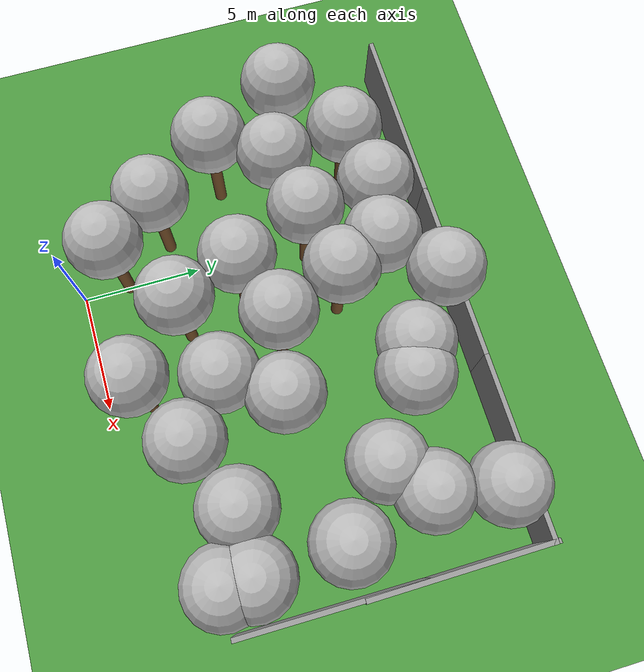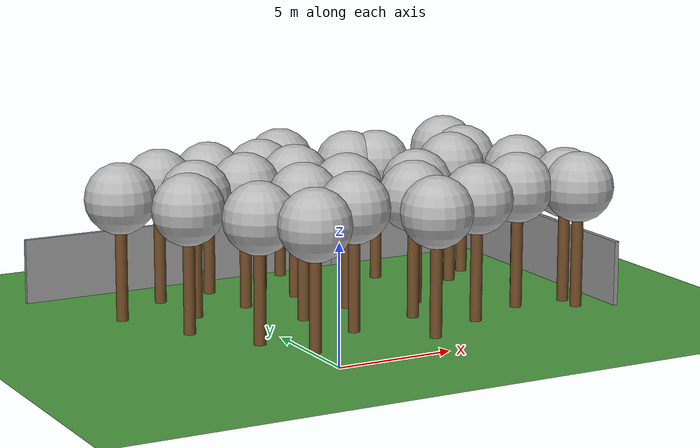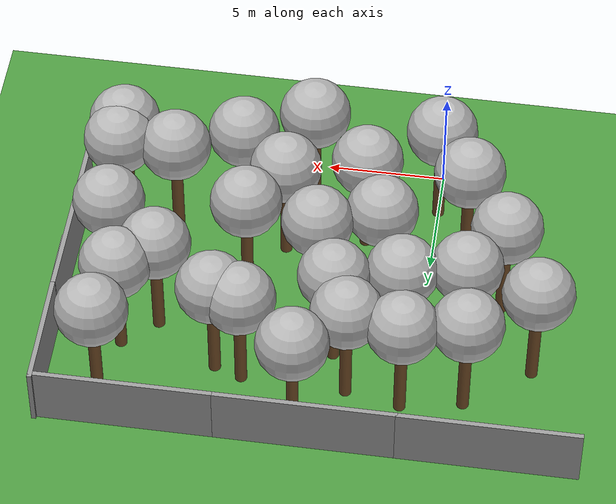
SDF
<sdf version="1.7">
 <world name="default">
  <model name="tree_simple495">
   <static>1</static>
   <link name="link">
    <pose>0 0 0.1 0 -0 0</pose>
    <collision name="collision_trunk">
     <pose>0 0 2 0 -0 0</pose>
     <geometry><cylinder><radius>0.25</radius><length>4</length></cylinder></geometry>
    </collision>
    <collision name="collision_treetop">
     <pose>0 0 5.2 0 -0 0</pose>
     <geometry><sphere><radius>1.5</radius></sphere></geometry>
    </collision>
    <visual name="trunk">
     <pose>0 0 2 0 -0 0</pose>
     <geometry><cylinder><radius>0.25</radius><length>4</length></cylinder></geometry>
     <material>
      <script>
       <uri>model://tree_simple/scripts</uri>
       <uri>model://tree_simple/materials/textures</uri>
       <name>TreeSimple/Trunk</name>
      </script>
     </material>
    </visual>
    <visual name="treetop">
     <pose>0 0 5.2 0 -0 0</pose>
     <geometry><sphere><radius>1.5</radius></sphere></geometry>
     <material>
      <script>
       <uri>model://tree_simple/scripts</uri>
       <uri>model://tree_simple/materials/textures</uri>
       <name>TreeSimple/Treetop</name>
      </script>
     </material>
    </visual>
   </link>
   <pose>13.2663 3.23501 0 0 -0 0</pose>
  </model>
  <model name="tree_simple486">
   <static>1</static>
   <link name="link">
    <pose>0 0 0.1 0 -0 0</pose>
    <collision name="collision_trunk">
     <pose>0 0 2 0 -0 0</pose>
     <geometry><cylinder><radius>0.25</radius><length>4</length></cylinder></geometry>
    </collision>
    <collision name="collision_treetop">
     <pose>0 0 5.2 0 -0 0</pose>
     <geometry><sphere><radius>1.5</radius></sphere></geometry>
    </collision>
    <visual name="trunk">
     <pose>0 0 2 0 -0 0</pose>
     <geometry><cylinder><radius>0.25</radius><length>4</length></cylinder></geometry>
     <material>
      <script>
       <uri>model://tree_simple/scripts</uri>
       <uri>model://tree_simple/materials/textures</uri>
       <name>TreeSimple/Trunk</name>
      </script>
     </material>
    </visual>
    <visual name="treetop">
     <pose>0 0 5.2 0 -0 0</pose>
     <geometry><sphere><radius>1.5</radius></sphere></geometry>
     <material>
      <script>
       <uri>model://tree_simple/scripts</uri>
       <uri>model://tree_simple/materials/textures</uri>
       <name>TreeSimple/Treetop</name>
      </script>
     </material>
    </visual>
   </link>
   <pose>8.18282 11.6524 0 0 -0 0</pose>
  </model>
  <model name="tree_simple480">
   <static>1</static>
   <link name="link">
    <pose>0 0 0.1 0 -0 0</pose>
    <collision name="collision_trunk">
     <pose>0 0 2 0 -0 0</pose>
     <geometry><cylinder><radius>0.25</radius><length>4</length></cylinder></geometry>
    </collision>
    <collision name="collision_treetop">
     <pose>0 0 5.2 0 -0 0</pose>
     <geometry><sphere><radius>1.5</radius></sphere></geometry>
    </collision>
    <visual name="trunk">
     <pose>0 0 2 0 -0 0</pose>
     <geometry><cylinder><radius>0.25</radius><length>4</length></cylinder></geometry>
     <material>
      <script>
       <uri>model://tree_simple/scripts</uri>
       <uri>model://tree_simple/materials/textures</uri>
       <name>TreeSimple/Trunk</name>
      </script>
     </material>
    </visual>
    <visual name="treetop">
     <pose>0 0 5.2 0 -0 0</pose>
     <geometry><sphere><radius>1.5</radius></sphere></geometry>
     <material>
      <script>
       <uri>model://tree_simple/scripts</uri>
       <uri>model://tree_simple/materials/textures</uri>
       <name>TreeSimple/Treetop</name>
      </script>
     </material>
    </visual>
   </link>
   <pose>-2.16211 12.1351 0 0 -0 0</pose>
  </model>
  <model name="tree_simple421">
   <static>1</static>
   <link name="link">
    <pose>0 0 0.1 0 -0 0</pose>
    <collision name="collision_trunk">
     <pose>0 0 2 0 -0 0</pose>
     <geometry><cylinder><radius>0.25</radius><length>4</length></cylinder></geometry>
    </collision>
    <collision name="collision_treetop">
     <pose>0 0 5.2 0 -0 0</pose>
     <geometry><sphere><radius>1.5</radius></sphere></geometry>
    </collision>
    <visual name="trunk">
     <pose>0 0 2 0 -0 0</pose>
     <geometry><cylinder><radius>0.25</radius><length>4</length></cylinder></geometry>
     <material>
      <script>
       <uri>model://tree_simple/scripts</uri>
       <uri>model://tree_simple/materials/textures</uri>
       <name>TreeSimple/Trunk</name>
      </script>
     </material>
    </visual>
    <visual name="treetop">
     <pose>0 0 5.2 0 -0 0</pose>
     <geometry><sphere><radius>1.5</radius></sphere></geometry>
     <material>
      <script>
       <uri>model://tree_simple/scripts</uri>
       <uri>model://tree_simple/materials/textures</uri>
       <name>TreeSimple/Treetop</name>
      </script>
     </material>
    </visual>
   </link>
   <pose>7.02493 12.056 0 0 -0 0</pose>
  </model>
  <model name="tree_simple417">
   <static>1</static>
   <link name="link">
    <pose>0 0 0.1 0 -0 0</pose>
    <collision name="collision_trunk">
     <pose>0 0 2 0 -0 0</pose>
     <geometry><cylinder><radius>0.25</radius><length>4</length></cylinder></geometry>
    </collision>
    <collision name="collision_treetop">
     <pose>0 0 5.2 0 -0 0</pose>
     <geometry><sphere><radius>1.5</radius></sphere></geometry>
    </collision>
    <visual name="trunk">
     <pose>0 0 2 0 -0 0</pose>
     <geometry><cylinder><radius>0.25</radius><length>4</length></cylinder></geometry>
     <material>
      <script>
       <uri>model://tree_simple/scripts</uri>
       <uri>model://tree_simple/materials/textures</uri>
       <name>TreeSimple/Trunk</name>
      </script>
     </material>
    </visual>
    <visual name="treetop">
     <pose>0 0 5.2 0 -0 0</pose>
     <geometry><sphere><radius>1.5</radius></sphere></geometry>
     <material>
      <script>
       <uri>model://tree_simple/scripts</uri>
       <uri>model://tree_simple/materials/textures</uri>
       <name>TreeSimple/Treetop</name>
      </script>
     </material>
    </visual>
   </link>
   <pose>-1.82311 9.17527 0 0 -0 0</pose>
  </model>
  <model name="tree_simple412">
   <static>1</static>
   <link name="link">
    <pose>0 0 0.1 0 -0 0</pose>
    <collision name="collision_trunk">
     <pose>0 0 2 0 -0 0</pose>
     <geometry><cylinder><radius>0.25</radius><length>4</length></cylinder></geometry>
    </collision>
    <collision name="collision_treetop">
     <pose>0 0 5.2 0 -0 0</pose>
     <geometry><sphere><radius>1.5</radius></sphere></geometry>
    </collision>
    <visual name="trunk">
     <pose>0 0 2 0 -0 0</pose>
     <geometry><cylinder><radius>0.25</radius><length>4</length></cylinder></geometry>
     <material>
      <script>
       <uri>model://tree_simple/scripts</uri>
       <uri>model://tree_simple/materials/textures</uri>
       <name>TreeSimple/Trunk</name>
      </script>
     </material>
    </visual>
    <visual name="treetop">
     <pose>0 0 5.2 0 -0 0</pose>
     <geometry><sphere><radius>1.5</radius></sphere></geometry>
     <material>
      <script>
       <uri>model://tree_simple/scripts</uri>
       <uri>model://tree_simple/materials/textures</uri>
       <name>TreeSimple/Treetop</name>
      </script>
     </material>
    </visual>
   </link>
   <pose>1.94235 6.68973 0 0 -0 0</pose>
  </model>
  <model name="tree_simple350">
   <static>1</static>
   <link name="link">
    <pose>0 0 0.1 0 -0 0</pose>
    <collision name="collision_trunk">
     <pose>0 0 2 0 -0 0</pose>
     <geometry><cylinder><radius>0.25</radius><length>4</length></cylinder></geometry>
    </collision>
    <collision name="collision_treetop">
     <pose>0 0 5.2 0 -0 0</pose>
     <geometry><sphere><radius>1.5</radius></sphere></geometry>
    </collision>
    <visual name="trunk">
     <pose>0 0 2 0 -0 0</pose>
     <geometry><cylinder><radius>0.25</radius><length>4</length></cylinder></geometry>
     <material>
      <script>
       <uri>model://tree_simple/scripts</uri>
       <uri>model://tree_simple/materials/textures</uri>
       <name>TreeSimple/Trunk</name>
      </script>
     </material>
    </visual>
    <visual name="treetop">
     <pose>0 0 5.2 0 -0 0</pose>
     <geometry><sphere><radius>1.5</radius></sphere></geometry>
     <material>
      <script>
       <uri>model://tree_simple/scripts</uri>
       <uri>model://tree_simple/materials/textures</uri>
       <name>TreeSimple/Treetop</name>
      </script>
     </material>
    </visual>
   </link>
   <pose>5.40258 1.73801 0 0 -0 0</pose>
  </model>
  <model name="tree_simple346">
   <static>1</static>
   <link name="link">
    <pose>0 0 0.1 0 -0 0</pose>
    <collision name="collision_trunk">
     <pose>0 0 2 0 -0 0</pose>
     <geometry><cylinder><radius>0.25</radius><length>4</length></cylinder></geometry>
    </collision>
    <collision name="collision_treetop">
     <pose>0 0 5.2 0 -0 0</pose>
     <geometry><sphere><radius>1.5</radius></sphere></geometry>
    </collision>
    <visual name="trunk">
     <pose>0 0 2 0 -0 0</pose>
     <geometry><cylinder><radius>0.25</radius><length>4</length></cylinder></geometry>
     <material>
      <script>
       <uri>model://tree_simple/scripts</uri>
       <uri>model://tree_simple/materials/textures</uri>
       <name>TreeSimple/Trunk</name>
      </script>
     </material>
    </visual>
    <visual name="treetop">
     <pose>0 0 5.2 0 -0 0</pose>
     <geometry><sphere><radius>1.5</radius></sphere></geometry>
     <material>
      <script>
       <uri>model://tree_simple/scripts</uri>
       <uri>model://tree_simple/materials/textures</uri>
       <name>TreeSimple/Treetop</name>
      </script>
     </material>
    </visual>
   </link>
   <pose>6.18559 4.9134 0 0 -0 0</pose>
  </model>
  <model name="tree_simple324">
   <static>1</static>
   <link name="link">
    <pose>0 0 0.1 0 -0 0</pose>
    <collision name="collision_trunk">
     <pose>0 0 2 0 -0 0</pose>
     <geometry><cylinder><radius>0.25</radius><length>4</length></cylinder></geometry>
    </collision>
    <collision name="collision_treetop">
     <pose>0 0 5.2 0 -0 0</pose>
     <geometry><sphere><radius>1.5</radius></sphere></geometry>
    </collision>
    <visual name="trunk">
     <pose>0 0 2 0 -0 0</pose>
     <geometry><cylinder><radius>0.25</radius><length>4</length></cylinder></geometry>
     <material>
      <script>
       <uri>model://tree_simple/scripts</uri>
       <uri>model://tree_simple/materials/textures</uri>
       <name>TreeSimple/Trunk</name>
      </script>
     </material>
    </visual>
    <visual name="treetop">
     <pose>0 0 5.2 0 -0 0</pose>
     <geometry><sphere><radius>1.5</radius></sphere></geometry>
     <material>
      <script>
       <uri>model://tree_simple/scripts</uri>
       <uri>model://tree_simple/materials/textures</uri>
       <name>TreeSimple/Treetop</name>
      </script>
     </material>
    </visual>
   </link>
   <pose>2.67974 12.1657 0 0 -0 0</pose>
  </model>
  <model name="tree_simple304">
   <static>1</static>
   <link name="link">
    <pose>0 0 0.1 0 -0 0</pose>
    <collision name="collision_trunk">
     <pose>0 0 2 0 -0 0</pose>
     <geometry><cylinder><radius>0.25</radius><length>4</length></cylinder></geometry>
    </collision>
    <collision name="collision_treetop">
     <pose>0 0 5.2 0 -0 0</pose>
     <geometry><sphere><radius>1.5</radius></sphere></geometry>
    </collision>
    <visual name="trunk">
     <pose>0 0 2 0 -0 0</pose>
     <geometry><cylinder><radius>0.25</radius><length>4</length></cylinder></geometry>
     <material>
      <script>
       <uri>model://tree_simple/scripts</uri>
       <uri>model://tree_simple/materials/textures</uri>
       <name>TreeSimple/Trunk</name>
      </script>
     </material>
    </visual>
    <visual name="treetop">
     <pose>0 0 5.2 0 -0 0</pose>
     <geometry><sphere><radius>1.5</radius></sphere></geometry>
     <material>
      <script>
       <uri>model://tree_simple/scripts</uri>
       <uri>model://tree_simple/materials/textures</uri>
       <name>TreeSimple/Treetop</name>
      </script>
     </material>
    </visual>
   </link>
   <pose>12.7492 13.4737 0 0 -0 0</pose>
  </model>
  <model name="tree_simple269">
   <static>1</static>
   <link name="link">
    <pose>0 0 0.1 0 -0 0</pose>
    <collision name="collision_trunk">
     <pose>0 0 2 0 -0 0</pose>
     <geometry><cylinder><radius>0.25</radius><length>4</length></cylinder></geometry>
    </collision>
    <collision name="collision_treetop">
     <pose>0 0 5.2 0 -0 0</pose>
     <geometry><sphere><radius>1.5</radius></sphere></geometry>
    </collision>
    <visual name="trunk">
     <pose>0 0 2 0 -0 0</pose>
     <geometry><cylinder><radius>0.25</radius><length>4</length></cylinder></geometry>
     <material>
      <script>
       <uri>model://tree_simple/scripts</uri>
       <uri>model://tree_simple/materials/textures</uri>
       <name>TreeSimple/Trunk</name>
      </script>
     </material>
    </visual>
    <visual name="treetop">
     <pose>0 0 5.2 0 -0 0</pose>
     <geometry><sphere><radius>1.5</radius></sphere></geometry>
     <material>
      <script>
       <uri>model://tree_simple/scripts</uri>
       <uri>model://tree_simple/materials/textures</uri>
       <name>TreeSimple/Treetop</name>
      </script>
     </material>
    </visual>
   </link>
   <pose>3.43166 10.3419 0 0 -0 0</pose>
  </model>
  <model name="tree_simple246">
   <static>1</static>
   <link name="link">
    <pose>0 0 0.1 0 -0 0</pose>
    <collision name="collision_trunk">
     <pose>0 0 2 0 -0 0</pose>
     <geometry><cylinder><radius>0.25</radius><length>4</length></cylinder></geometry>
    </collision>
    <collision name="collision_treetop">
     <pose>0 0 5.2 0 -0 0</pose>
     <geometry><sphere><radius>1.5</radius></sphere></geometry>
    </collision>
    <visual name="trunk">
     <pose>0 0 2 0 -0 0</pose>
     <geometry><cylinder><radius>0.25</radius><length>4</length></cylinder></geometry>
     <material>
      <script>
       <uri>model://tree_simple/scripts</uri>
       <uri>model://tree_simple/materials/textures</uri>
       <name>TreeSimple/Trunk</name>
      </script>
     </material>
    </visual>
    <visual name="treetop">
     <pose>0 0 5.2 0 -0 0</pose>
     <geometry><sphere><radius>1.5</radius></sphere></geometry>
     <material>
      <script>
       <uri>model://tree_simple/scripts</uri>
       <uri>model://tree_simple/materials/textures</uri>
       <name>TreeSimple/Treetop</name>
      </script>
     </material>
    </visual>
   </link>
   <pose>4.59531 14.0378 0 0 -0 0</pose>
  </model>
  <model name="tree_simple145">
   <static>1</static>
   <link name="link">
    <pose>0 0 0.1 0 -0 0</pose>
    <collision name="collision_trunk">
     <pose>0 0 2 0 -0 0</pose>
     <geometry><cylinder><radius>0.25</radius><length>4</length></cylinder></geometry>
    </collision>
    <collision name="collision_treetop">
     <pose>0 0 5.2 0 -0 0</pose>
     <geometry><sphere><radius>1.5</radius></sphere></geometry>
    </collision>
    <visual name="trunk">
     <pose>0 0 2 0 -0 0</pose>
     <geometry><cylinder><radius>0.25</radius><length>4</length></cylinder></geometry>
     <material>
      <script>
       <uri>model://tree_simple/scripts</uri>
       <uri>model://tree_simple/materials/textures</uri>
       <name>TreeSimple/Trunk</name>
      </script>
     </material>
    </visual>
    <visual name="treetop">
     <pose>0 0 5.2 0 -0 0</pose>
     <geometry><sphere><radius>1.5</radius></sphere></geometry>
     <material>
      <script>
       <uri>model://tree_simple/scripts</uri>
       <uri>model://tree_simple/materials/textures</uri>
       <name>TreeSimple/Treetop</name>
      </script>
     </material>
    </visual>
   </link>
   <pose>7.53257 6.98647 0 0 -0 0</pose>
  </model>
  <model name="tree_simple130">
   <static>1</static>
   <link name="link">
    <pose>0 0 0.1 0 -0 0</pose>
    <collision name="collision_trunk">
     <pose>0 0 2 0 -0 0</pose>
     <geometry><cylinder><radius>0.25</radius><length>4</length></cylinder></geometry>
    </collision>
    <collision name="collision_treetop">
     <pose>0 0 5.2 0 -0 0</pose>
     <geometry><sphere><radius>1.5</radius></sphere></geometry>
    </collision>
    <visual name="trunk">
     <pose>0 0 2 0 -0 0</pose>
     <geometry><cylinder><radius>0.25</radius><length>4</length></cylinder></geometry>
     <material>
      <script>
       <uri>model://tree_simple/scripts</uri>
       <uri>model://tree_simple/materials/textures</uri>
       <name>TreeSimple/Trunk</name>
      </script>
     </material>
    </visual>
    <visual name="treetop">
     <pose>0 0 5.2 0 -0 0</pose>
     <geometry><sphere><radius>1.5</radius></sphere></geometry>
     <material>
      <script>
       <uri>model://tree_simple/scripts</uri>
       <uri>model://tree_simple/materials/textures</uri>
       <name>TreeSimple/Treetop</name>
      </script>
     </material>
    </visual>
   </link>
   <pose>-4.79782 10.1485 0 0 -0 0</pose>
  </model>
  <model name="tree_simple81">
   <static>1</static>
   <link name="link">
    <pose>0 0 0.1 0 -0 0</pose>
    <collision name="collision_trunk">
     <pose>0 0 2 0 -0 0</pose>
     <geometry><cylinder><radius>0.25</radius><length>4</length></cylinder></geometry>
    </collision>
    <collision name="collision_treetop">
     <pose>0 0 5.2 0 -0 0</pose>
     <geometry><sphere><radius>1.5</radius></sphere></geometry>
    </collision>
    <visual name="trunk">
     <pose>0 0 2 0 -0 0</pose>
     <geometry><cylinder><radius>0.25</radius><length>4</length></cylinder></geometry>
     <material>
      <script>
       <uri>model://tree_simple/scripts</uri>
       <uri>model://tree_simple/materials/textures</uri>
       <name>TreeSimple/Trunk</name>
      </script>
     </material>
    </visual>
    <visual name="treetop">
     <pose>0 0 5.2 0 -0 0</pose>
     <geometry><sphere><radius>1.5</radius></sphere></geometry>
     <material>
      <script>
       <uri>model://tree_simple/scripts</uri>
       <uri>model://tree_simple/materials/textures</uri>
       <name>TreeSimple/Treetop</name>
      </script>
     </material>
    </visual>
   </link>
   <pose>13.3023 4.2922 0 0 -0 0</pose>
  </model>
  <model name="tree_simple72">
   <static>1</static>
   <link name="link">
    <pose>0 0 0.1 0 -0 0</pose>
    <collision name="collision_trunk">
     <pose>0 0 2 0 -0 0</pose>
     <geometry><cylinder><radius>0.25</radius><length>4</length></cylinder></geometry>
    </collision>
    <collision name="collision_treetop">
     <pose>0 0 5.2 0 -0 0</pose>
     <geometry><sphere><radius>1.5</radius></sphere></geometry>
    </collision>
    <visual name="trunk">
     <pose>0 0 2 0 -0 0</pose>
     <geometry><cylinder><radius>0.25</radius><length>4</length></cylinder></geometry>
     <material>
      <script>
       <uri>model://tree_simple/scripts</uri>
       <uri>model://tree_simple/materials/textures</uri>
       <name>TreeSimple/Trunk</name>
      </script>
     </material>
    </visual>
    <visual name="treetop">
     <pose>0 0 5.2 0 -0 0</pose>
     <geometry><sphere><radius>1.5</radius></sphere></geometry>
     <material>
      <script>
       <uri>model://tree_simple/scripts</uri>
       <uri>model://tree_simple/materials/textures</uri>
       <name>TreeSimple/Treetop</name>
      </script>
     </material>
    </visual>
   </link>
   <pose>0.388373 12.6066 0 0 -0 0</pose>
  </model>
  <model name="tree_simple66">
   <static>1</static>
   <link name="link">
    <pose>0 0 0.1 0 -0 0</pose>
    <collision name="collision_trunk">
     <pose>0 0 2 0 -0 0</pose>
     <geometry><cylinder><radius>0.25</radius><length>4</length></cylinder></geometry>
    </collision>
    <collision name="collision_treetop">
     <pose>0 0 5.2 0 -0 0</pose>
     <geometry><sphere><radius>1.5</radius></sphere></geometry>
    </collision>
    <visual name="trunk">
     <pose>0 0 2 0 -0 0</pose>
     <geometry><cylinder><radius>0.25</radius><length>4</length></cylinder></geometry>
     <material>
      <script>
       <uri>model://tree_simple/scripts</uri>
       <uri>model://tree_simple/materials/textures</uri>
       <name>TreeSimple/Trunk</name>
      </script>
     </material>
    </visual>
    <visual name="treetop">
     <pose>0 0 5.2 0 -0 0</pose>
     <geometry><sphere><radius>1.5</radius></sphere></geometry>
     <material>
      <script>
       <uri>model://tree_simple/scripts</uri>
       <uri>model://tree_simple/materials/textures</uri>
       <name>TreeSimple/Treetop</name>
      </script>
     </material>
    </visual>
   </link>
   <pose>8.20454 3.17714 0 0 -0 0</pose>
  </model>
  <model name="ground_plane">
   <static>1</static>
   <link name="link">
    <collision name="collision">
     <geometry><plane><normal>0 0 1</normal><size>30 30</size></plane></geometry>
     <surface><friction><ode><mu>100</mu><mu2>50</mu2></ode></friction></surface>
    </collision>
    <visual name="grass">
     <cast_shadows>0</cast_shadows>
     <geometry><plane><normal>0 0 1</normal><size>30 30</size></plane></geometry>
     <material>
      <script><uri>file://media/materials/scripts/Gazebo.material</uri><name>Gazebo/Grass</name></script>
     </material>
    </visual>
   </link>
  </model>
  <model name="grey_wall_clone_1">
   <static>1</static>
   <link name="link">
    <pose>0 0 1.4 0 -0 0</pose>
    <collision name="collision"><geometry><box><size>7.5 0.2 2.8</size></box></geometry></collision>
    <visual name="visual">
     <cast_shadows>0</cast_shadows>
     <geometry><box><size>7.5 0.2 2.8</size></box></geometry>
     <material>
      <script>
       <uri>model://grey_wall/materials/scripts</uri>
       <uri>model://grey_wall/materials/textures</uri>
       <name>vrc/grey_wall</name>
      </script>
     </material>
    </visual>
   </link>
   <pose>15.0742 6.56545 0 0 -0 1.56351</pose>
  </model>
  <model name="grey_wall_clone_2">
   <static>1</static>
   <link name="link">
    <pose>0 0 1.4 0 -0 0</pose>
    <collision name="collision"><geometry><box><size>7.5 0.2 2.8</size></box></geometry></collision>
    <visual name="visual">
     <cast_shadows>0</cast_shadows>
     <geometry><box><size>7.5 0.2 2.8</size></box></geometry>
     <material>
      <script>
       <uri>model://grey_wall/materials/scripts</uri>
       <uri>model://grey_wall/materials/textures</uri>
       <name>vrc/grey_wall</name>
      </script>
     </material>
    </visual>
   </link>
   <pose>15.1039 11.5218 0 0 -0 1.57542</pose>
  </model>
  <model name="grey_wall_clone_2_clone">
   <static>1</static>
   <link name="link">
    <pose>0 0 1.4 0 -0 0</pose>
    <collision name="collision"><geometry><box><size>7.5 0.2 2.8</size></box></geometry></collision>
    <visual name="visual">
     <cast_shadows>0</cast_shadows>
     <geometry><box><size>7.5 0.2 2.8</size></box></geometry>
     <material>
      <script>
       <uri>model://grey_wall/materials/scripts</uri>
       <uri>model://grey_wall/materials/textures</uri>
       <name>vrc/grey_wall</name>
      </script>
     </material>
    </visual>
   </link>
   <pose>11.4446 15.0622 0 0 0 -3.1404</pose>
  </model>
  <model name="grey_wall_clone_2_clone_clone">
   <static>1</static>
   <link name="link">
    <pose>0 0 1.4 0 -0 0</pose>
    <collision name="collision"><geometry><box><size>7.5 0.2 2.8</size></box></geometry></collision>
    <visual name="visual">
     <cast_shadows>0</cast_shadows>
     <geometry><box><size>7.5 0.2 2.8</size></box></geometry>
     <material>
      <script>
       <uri>model://grey_wall/materials/scripts</uri>
       <uri>model://grey_wall/materials/textures</uri>
       <name>vrc/grey_wall</name>
      </script>
     </material>
    </visual>
   </link>
   <pose>3.97484 15.0545 0 0 0 -3.1404</pose>
  </model>
  <model name="grey_wall_clone_2_clone_clone_0">
   <static>1</static>
   <link name="link">
    <pose>0 0 1.4 0 -0 0</pose>
    <collision name="collision"><geometry><box><size>7.5 0.2 2.8</size></box></geometry></collision>
    <visual name="visual">
     <cast_shadows>0</cast_shadows>
     <geometry><box><size>7.5 0.2 2.8</size></box></geometry>
     <material>
      <script>
       <uri>model://grey_wall/materials/scripts</uri>
       <uri>model://grey_wall/materials/textures</uri>
       <name>vrc/grey_wall</name>
      </script>
     </material>
    </visual>
   </link>
   <pose>-3.44128 15.0491 0 0 0 -3.1404</pose>
  </model>
  <model name="tree_simple432_clone_10">
   <static>1</static>
   <link name="link">
    <pose>0 0 0.1 0 -0 0</pose>
    <collision name="collision_trunk">
     <pose>0 0 2 0 -0 0</pose>
     <geometry><cylinder><radius>0.25</radius><length>4</length></cylinder></geometry>
    </collision>
    <collision name="collision_treetop">
     <pose>0 0 5.2 0 -0 0</pose>
     <geometry><sphere><radius>1.5</radius></sphere></geometry>
    </collision>
    <visual name="trunk">
     <pose>0 0 2 0 -0 0</pose>
     <geometry><cylinder><radius>0.25</radius><length>4</length></cylinder></geometry>
     <material>
      <script>
       <uri>model://tree_simple/scripts</uri>
       <uri>model://tree_simple/materials/textures</uri>
       <name>TreeSimple/Trunk</name>
      </script>
     </material>
    </visual>
    <visual name="treetop">
     <pose>0 0 5.2 0 -0 0</pose>
     <geometry><sphere><radius>1.5</radius></sphere></geometry>
     <material>
      <script>
       <uri>model://tree_simple/scripts</uri>
       <uri>model://tree_simple/materials/textures</uri>
       <name>TreeSimple/Treetop</name>
      </script>
     </material>
    </visual>
   </link>
   <pose>-1.3919 4.12139 0 0 -0 0</pose>
  </model>
  <model name="tree_simple432_clone_11">
   <static>1</static>
   <link name="link">
    <pose>0 0 0.1 0 -0 0</pose>
    <collision name="collision_trunk">
     <pose>0 0 2 0 -0 0</pose>
     <geometry><cylinder><radius>0.25</radius><length>4</length></cylinder></geometry>
    </collision>
    <collision name="collision_treetop">
     <pose>0 0 5.2 0 -0 0</pose>
     <geometry><sphere><radius>1.5</radius></sphere></geometry>
    </collision>
    <visual name="trunk">
     <pose>0 0 2 0 -0 0</pose>
     <geometry><cylinder><radius>0.25</radius><length>4</length></cylinder></geometry>
     <material>
      <script>
       <uri>model://tree_simple/scripts</uri>
       <uri>model://tree_simple/materials/textures</uri>
       <name>TreeSimple/Trunk</name>
      </script>
     </material>
    </visual>
    <visual name="treetop">
     <pose>0 0 5.2 0 -0 0</pose>
     <geometry><sphere><radius>1.5</radius></sphere></geometry>
     <material>
      <script>
       <uri>model://tree_simple/scripts</uri>
       <uri>model://tree_simple/materials/textures</uri>
       <name>TreeSimple/Treetop</name>
      </script>
     </material>
    </visual>
   </link>
   <pose>0 2 0 0 -0 0</pose>
  </model>
  <model name="tree_simple432_clone_12">
   <static>1</static>
   <link name="link">
    <pose>0 0 0.1 0 -0 0</pose>
    <collision name="collision_trunk">
     <pose>0 0 2 0 -0 0</pose>
     <geometry><cylinder><radius>0.25</radius><length>4</length></cylinder></geometry>
    </collision>
    <collision name="collision_treetop">
     <pose>0 0 5.2 0 -0 0</pose>
     <geometry><sphere><radius>1.5</radius></sphere></geometry>
    </collision>
    <visual name="trunk">
     <pose>0 0 2 0 -0 0</pose>
     <geometry><cylinder><radius>0.25</radius><length>4</length></cylinder></geometry>
     <material>
      <script>
       <uri>model://tree_simple/scripts</uri>
       <uri>model://tree_simple/materials/textures</uri>
       <name>TreeSimple/Trunk</name>
      </script>
     </material>
    </visual>
    <visual name="treetop">
     <pose>0 0 5.2 0 -0 0</pose>
     <geometry><sphere><radius>1.5</radius></sphere></geometry>
     <material>
      <script>
       <uri>model://tree_simple/scripts</uri>
       <uri>model://tree_simple/materials/textures</uri>
       <name>TreeSimple/Treetop</name>
      </script>
     </material>
    </visual>
   </link>
   <pose>2.88698 4.05449 0 0 -0 0</pose>
  </model>
  <model name="tree_simple432_clone_14">
   <static>1</static>
   <link name="link">
    <pose>0 0 0.1 0 -0 0</pose>
    <collision name="collision_trunk">
     <pose>0 0 2 0 -0 0</pose>
     <geometry><cylinder><radius>0.25</radius><length>4</length></cylinder></geometry>
    </collision>
    <collision name="collision_treetop">
     <pose>0 0 5.2 0 -0 0</pose>
     <geometry><sphere><radius>1.5</radius></sphere></geometry>
    </collision>
    <visual name="trunk">
     <pose>0 0 2 0 -0 0</pose>
     <geometry><cylinder><radius>0.25</radius><length>4</length></cylinder></geometry>
     <material>
      <script>
       <uri>model://tree_simple/scripts</uri>
       <uri>model://tree_simple/materials/textures</uri>
       <name>TreeSimple/Trunk</name>
      </script>
     </material>
    </visual>
    <visual name="treetop">
     <pose>0 0 5.2 0 -0 0</pose>
     <geometry><sphere><radius>1.5</radius></sphere></geometry>
     <material>
      <script>
       <uri>model://tree_simple/scripts</uri>
       <uri>model://tree_simple/materials/textures</uri>
       <name>TreeSimple/Treetop</name>
      </script>
     </material>
    </visual>
   </link>
   <pose>13.1147 7.71643 0 0 -0 0</pose>
  </model>
  <model name="tree_simple432_clone_15">
   <static>1</static>
   <link name="link">
    <pose>0 0 0.1 0 -0 0</pose>
    <collision name="collision_trunk">
     <pose>0 0 2 0 -0 0</pose>
     <geometry><cylinder><radius>0.25</radius><length>4</length></cylinder></geometry>
    </collision>
    <collision name="collision_treetop">
     <pose>0 0 5.2 0 -0 0</pose>
     <geometry><sphere><radius>1.5</radius></sphere></geometry>
    </collision>
    <visual name="trunk">
     <pose>0 0 2 0 -0 0</pose>
     <geometry><cylinder><radius>0.25</radius><length>4</length></cylinder></geometry>
     <material>
      <script>
       <uri>model://tree_simple/scripts</uri>
       <uri>model://tree_simple/materials/textures</uri>
       <name>TreeSimple/Trunk</name>
      </script>
     </material>
    </visual>
    <visual name="treetop">
     <pose>0 0 5.2 0 -0 0</pose>
     <geometry><sphere><radius>1.5</radius></sphere></geometry>
     <material>
      <script>
       <uri>model://tree_simple/scripts</uri>
       <uri>model://tree_simple/materials/textures</uri>
       <name>TreeSimple/Treetop</name>
      </script>
     </material>
    </visual>
   </link>
   <pose>10.8627 9.71572 0 0 -0 0</pose>
  </model>
  <model name="tree_simple432_clone_16">
   <static>1</static>
   <link name="link">
    <pose>0 0 0.1 0 -0 0</pose>
    <collision name="collision_trunk">
     <pose>0 0 2 0 -0 0</pose>
     <geometry><cylinder><radius>0.25</radius><length>4</length></cylinder></geometry>
    </collision>
    <collision name="collision_treetop">
     <pose>0 0 5.2 0 -0 0</pose>
     <geometry><sphere><radius>1.5</radius></sphere></geometry>
    </collision>
    <visual name="trunk">
     <pose>0 0 2 0 -0 0</pose>
     <geometry><cylinder><radius>0.25</radius><length>4</length></cylinder></geometry>
     <material>
      <script>
       <uri>model://tree_simple/scripts</uri>
       <uri>model://tree_simple/materials/textures</uri>
       <name>TreeSimple/Trunk</name>
      </script>
     </material>
    </visual>
    <visual name="treetop">
     <pose>0 0 5.2 0 -0 0</pose>
     <geometry><sphere><radius>1.5</radius></sphere></geometry>
     <material>
      <script>
       <uri>model://tree_simple/scripts</uri>
       <uri>model://tree_simple/materials/textures</uri>
       <name>TreeSimple/Treetop</name>
      </script>
     </material>
    </visual>
   </link>
   <pose>10.9282 4.32824 0 0 -0 0</pose>
  </model>
  <model name="tree_simple432_clone_30">
   <static>1</static>
   <link name="link">
    <pose>0 0 0.1 0 -0 0</pose>
    <collision name="collision_trunk">
     <pose>0 0 2 0 -0 0</pose>
     <geometry><cylinder><radius>0.25</radius><length>4</length></cylinder></geometry>
    </collision>
    <collision name="collision_treetop">
     <pose>0 0 5.2 0 -0 0</pose>
     <geometry><sphere><radius>1.5</radius></sphere></geometry>
    </collision>
    <visual name="trunk">
     <pose>0 0 2 0 -0 0</pose>
     <geometry><cylinder><radius>0.25</radius><length>4</length></cylinder></geometry>
     <material>
      <script>
       <uri>model://tree_simple/scripts</uri>
       <uri>model://tree_simple/materials/textures</uri>
       <name>TreeSimple/Trunk</name>
      </script>
     </material>
    </visual>
    <visual name="treetop">
     <pose>0 0 5.2 0 -0 0</pose>
     <geometry><sphere><radius>1.5</radius></sphere></geometry>
     <material>
      <script>
       <uri>model://tree_simple/scripts</uri>
       <uri>model://tree_simple/materials/textures</uri>
       <name>TreeSimple/Treetop</name>
      </script>
     </material>
    </visual>
   </link>
   <pose>-3.21159 6.8948 0 0 -0 0</pose>
  </model>
  <model name="tree_simple432_clone_31">
   <static>1</static>
   <link name="link">
    <pose>0 0 0.1 0 -0 0</pose>
    <collision name="collision_trunk">
     <pose>0 0 2 0 -0 0</pose>
     <geometry><cylinder><radius>0.25</radius><length>4</length></cylinder></geometry>
    </collision>
    <collision name="collision_treetop">
     <pose>0 0 5.2 0 -0 0</pose>
     <geometry><sphere><radius>1.5</radius></sphere></geometry>
    </collision>
    <visual name="trunk">
     <pose>0 0 2 0 -0 0</pose>
     <geometry><cylinder><radius>0.25</radius><length>4</length></cylinder></geometry>
     <material>
      <script>
       <uri>model://tree_simple/scripts</uri>
       <uri>model://tree_simple/materials/textures</uri>
       <name>TreeSimple/Trunk</name>
      </script>
     </material>
    </visual>
    <visual name="treetop">
     <pose>0 0 5.2 0 -0 0</pose>
     <geometry><sphere><radius>1.5</radius></sphere></geometry>
     <material>
      <script>
       <uri>model://tree_simple/scripts</uri>
       <uri>model://tree_simple/materials/textures</uri>
       <name>TreeSimple/Treetop</name>
      </script>
     </material>
    </visual>
   </link>
   <pose>4.4875 7.60411 0 0 -0 0</pose>
  </model>
  <model name="tree_simple432_clone_32">
   <static>1</static>
   <link name="link">
    <pose>0 0 0.1 0 -0 0</pose>
    <collision name="collision_trunk">
     <pose>0 0 2 0 -0 0</pose>
     <geometry><cylinder><radius>0.25</radius><length>4</length></cylinder></geometry>
    </collision>
    <collision name="collision_treetop">
     <pose>0 0 5.2 0 -0 0</pose>
     <geometry><sphere><radius>1.5</radius></sphere></geometry>
    </collision>
    <visual name="trunk">
     <pose>0 0 2 0 -0 0</pose>
     <geometry><cylinder><radius>0.25</radius><length>4</length></cylinder></geometry>
     <material>
      <script>
       <uri>model://tree_simple/scripts</uri>
       <uri>model://tree_simple/materials/textures</uri>
       <name>TreeSimple/Trunk</name>
      </script>
     </material>
    </visual>
    <visual name="treetop">
     <pose>0 0 5.2 0 -0 0</pose>
     <geometry><sphere><radius>1.5</radius></sphere></geometry>
     <material>
      <script>
       <uri>model://tree_simple/scripts</uri>
       <uri>model://tree_simple/materials/textures</uri>
       <name>TreeSimple/Treetop</name>
      </script>
     </material>
    </visual>
   </link>
   <pose>0.738576 9.70863 0 0 -0 0</pose>
  </model>
  <model name="tree_simple432_clone_35">
   <static>1</static>
   <link name="link">
    <pose>0 0 0.1 0 -0 0</pose>
    <collision name="collision_trunk">
     <pose>0 0 2 0 -0 0</pose>
     <geometry><cylinder><radius>0.25</radius><length>4</length></cylinder></geometry>
    </collision>
    <collision name="collision_treetop">
     <pose>0 0 5.2 0 -0 0</pose>
     <geometry><sphere><radius>1.5</radius></sphere></geometry>
    </collision>
    <visual name="trunk">
     <pose>0 0 2 0 -0 0</pose>
     <geometry><cylinder><radius>0.25</radius><length>4</length></cylinder></geometry>
     <material>
      <script>
       <uri>model://tree_simple/scripts</uri>
       <uri>model://tree_simple/materials/textures</uri>
       <name>TreeSimple/Trunk</name>
      </script>
     </material>
    </visual>
    <visual name="treetop">
     <pose>0 0 5.2 0 -0 0</pose>
     <geometry><sphere><radius>1.5</radius></sphere></geometry>
     <material>
      <script>
       <uri>model://tree_simple/scripts</uri>
       <uri>model://tree_simple/materials/textures</uri>
       <name>TreeSimple/Treetop</name>
      </script>
     </material>
    </visual>
   </link>
   <pose>12.2464 10.9468 0 0 -0 0</pose>
  </model>
 </world>
</sdf>
